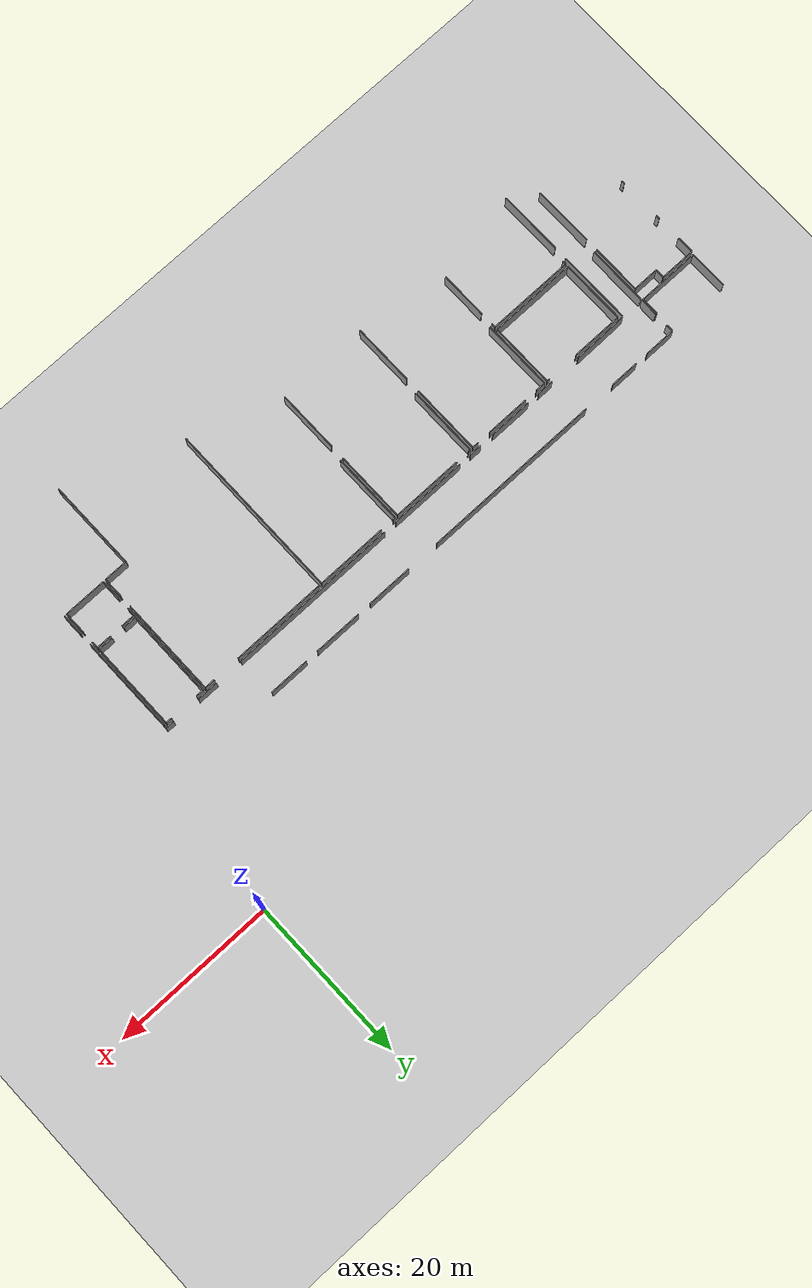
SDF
<sdf version="1.6">
 <world name="default">
  <model name="ground_plane">
   <static>1</static>
   <link name="link">
    <collision name="collision">
     <geometry><plane><normal>0 0 1</normal><size>100 100</size></plane></geometry>
     <surface><friction><ode><mu>100</mu><mu2>50</mu2></ode></friction></surface>
    </collision>
    <visual name="visual">
     <cast_shadows>0</cast_shadows>
     <geometry><plane><normal>0 0 1</normal><size>100 100</size></plane></geometry>
     <material>
      <script><uri>file://media/materials/scripts/gazebo.material</uri><name>Gazebo/Grey</name></script>
     </material>
    </visual>
   </link>
  </model>
  <model name="0510045904_A_40_1_102">
   <static>1</static>
   <link name="Wall_117">
    <collision name="Wall_117_Collision">
     <geometry><box><size>4.81902319499 0.1 2.5</size></box></geometry>
     <pose>2.4095115975 0 1.25 0 0 0</pose>
    </collision>
    <visual name="Wall_117_Visual">
     <pose>2.4095115975 0 1.25 0 0 0</pose>
     <geometry><box><size>4.81902319499 0.1 2.5</size></box></geometry>
     <material>
      <script><uri>file://media/materials/scripts/gazebo.material</uri><name>Gazebo/Grey</name></script>
      <ambient>1 1 1 1</ambient>
     </material>
    </visual>
    <pose>0.638592303884 -83.6713344421 0 0 0 1.57079632679</pose>
   </link>
   <link name="Wall_121">
    <collision name="Wall_121_Collision">
     <geometry><box><size>2.22986783805 0.1 2.5</size></box></geometry>
     <pose>1.11493391903 0 1.25 0 0 0</pose>
    </collision>
    <visual name="Wall_121_Visual">
     <pose>1.11493391903 0 1.25 0 0 0</pose>
     <geometry><box><size>2.22986783805 0.1 2.5</size></box></geometry>
     <material>
      <script><uri>file://media/materials/scripts/gazebo.material</uri><name>Gazebo/Grey</name></script>
      <ambient>1 1 1 1</ambient>
     </material>
    </visual>
    <pose>8.33648609189 -81.4490840073 0 0 0 -1.57079632679</pose>
   </link>
   <link name="Wall_122">
    <collision name="Wall_122_Collision">
     <geometry><box><size>7.69789755688 0.1 2.5</size></box></geometry>
     <pose>3.84894877844 0 1.25 0 0 0</pose>
    </collision>
    <visual name="Wall_122_Visual">
     <pose>3.84894877844 0 1.25 0 0 0</pose>
     <geometry><box><size>7.69789755688 0.1 2.5</size></box></geometry>
     <material>
      <script><uri>file://media/materials/scripts/gazebo.material</uri><name>Gazebo/Grey</name></script>
      <ambient>1 1 1 1</ambient>
     </material>
    </visual>
    <pose>8.33648609189 -83.6789518453 0 0 0 3.14060311009</pose>
   </link>
   <link name="Wall_123">
    <collision name="Wall_123_Collision">
     <geometry><box><size>2.25145048053 0.1 2.5</size></box></geometry>
     <pose>1.12572524027 0 1.25 0 0 0</pose>
    </collision>
    <visual name="Wall_123_Visual">
     <pose>1.12572524027 0 1.25 0 0 0</pose>
     <geometry><box><size>2.25145048053 0.1 2.5</size></box></geometry>
     <material>
      <script><uri>file://media/materials/scripts/gazebo.material</uri><name>Gazebo/Grey</name></script>
      <ambient>1 1 1 1</ambient>
     </material>
    </visual>
    <pose>8.48096283977 -83.7289727932 0 0 0 1.57079632679</pose>
   </link>
   <link name="Wall_124">
    <collision name="Wall_124_Collision">
     <geometry><box><size>0.934909289423 0.1 2.5</size></box></geometry>
     <pose>0.467454644712 0 1.25 0 0 0</pose>
    </collision>
    <visual name="Wall_124_Visual">
     <pose>0.467454644712 0 1.25 0 0 0</pose>
     <geometry><box><size>0.934909289423 0.1 2.5</size></box></geometry>
     <material>
      <script><uri>file://media/materials/scripts/gazebo.material</uri><name>Gazebo/Grey</name></script>
      <ambient>1 1 1 1</ambient>
     </material>
    </visual>
    <pose>8.48096283977 -79.7912831516 0 0 0 1.57079632679</pose>
   </link>
   <link name="Wall_125">
    <collision name="Wall_125_Collision">
     <geometry><box><size>3.87344954105 0.1 2.5</size></box></geometry>
     <pose>1.93672477053 0 1.25 0 0 0</pose>
    </collision>
    <visual name="Wall_125_Visual">
     <pose>1.93672477053 0 1.25 0 0 0</pose>
     <geometry><box><size>3.87344954105 0.1 2.5</size></box></geometry>
     <material>
      <script><uri>file://media/materials/scripts/gazebo.material</uri><name>Gazebo/Grey</name></script>
      <ambient>1 1 1 1</ambient>
     </material>
    </visual>
    <pose>8.48096283977 -78.8563738622 0 0 0 0.0</pose>
   </link>
   <link name="Wall_126">
    <collision name="Wall_126_Collision">
     <geometry><box><size>3.53269770335 0.1 2.5</size></box></geometry>
     <pose>1.76634885168 0 1.25 0 0 0</pose>
    </collision>
    <visual name="Wall_126_Visual">
     <pose>1.76634885168 0 1.25 0 0 0</pose>
     <geometry><box><size>3.53269770335 0.1 2.5</size></box></geometry>
     <material>
      <script><uri>file://media/materials/scripts/gazebo.material</uri><name>Gazebo/Grey</name></script>
      <ambient>1 1 1 1</ambient>
     </material>
    </visual>
    <pose>14.0589333096 -78.8563738622 0 0 0 0.0</pose>
   </link>
   <link name="Wall_127">
    <collision name="Wall_127_Collision">
     <geometry><box><size>22.369774144 0.1 2.5</size></box></geometry>
     <pose>11.184887072 0 1.25 0 0 0</pose>
    </collision>
    <visual name="Wall_127_Visual">
     <pose>11.184887072 0 1.25 0 0 0</pose>
     <geometry><box><size>22.369774144 0.1 2.5</size></box></geometry>
     <material>
      <script><uri>file://media/materials/scripts/gazebo.material</uri><name>Gazebo/Grey</name></script>
      <ambient>1 1 1 1</ambient>
     </material>
    </visual>
    <pose>21.67582871 -78.8563738622 0 0 0 0.0</pose>
   </link>
   <link name="Wall_128">
    <collision name="Wall_128_Collision">
     <geometry><box><size>5.63560882095 0.1 2.5</size></box></geometry>
     <pose>2.81780441048 0 1.25 0 0 0</pose>
    </collision>
    <visual name="Wall_128_Visual">
     <pose>2.81780441048 0 1.25 0 0 0</pose>
     <geometry><box><size>5.63560882095 0.1 2.5</size></box></geometry>
     <material>
      <script><uri>file://media/materials/scripts/gazebo.material</uri><name>Gazebo/Grey</name></script>
      <ambient>1 1 1 1</ambient>
     </material>
    </visual>
    <pose>48.1843919408 -78.8563738622 0 0 0 0.0</pose>
   </link>
   <link name="Wall_129">
    <collision name="Wall_129_Collision">
     <geometry><box><size>5.9568093237 0.1 2.5</size></box></geometry>
     <pose>2.97840466185 0 1.25 0 0 0</pose>
    </collision>
    <visual name="Wall_129_Visual">
     <pose>2.97840466185 0 1.25 0 0 0</pose>
     <geometry><box><size>5.9568093237 0.1 2.5</size></box></geometry>
     <material>
      <script><uri>file://media/materials/scripts/gazebo.material</uri><name>Gazebo/Grey</name></script>
      <ambient>1 1 1 1</ambient>
     </material>
    </visual>
    <pose>55.572003504 -78.8563738622 0 0 0 0.0</pose>
   </link>
   <link name="Wall_130">
    <collision name="Wall_130_Collision">
     <geometry><box><size>4.99269998857 0.1 2.5</size></box></geometry>
     <pose>2.49634999429 0 1.25 0 0 0</pose>
    </collision>
    <visual name="Wall_130_Visual">
     <pose>2.49634999429 0 1.25 0 0 0</pose>
     <geometry><box><size>4.99269998857 0.1 2.5</size></box></geometry>
     <material>
      <script><uri>file://media/materials/scripts/gazebo.material</uri><name>Gazebo/Grey</name></script>
      <ambient>1 1 1 1</ambient>
     </material>
    </visual>
    <pose>63.1348153415 -78.8563738622 0 0 0 0.0</pose>
   </link>
   <link name="Wall_133">
    <collision name="Wall_133_Collision">
     <geometry><box><size>1.09309736311 0.1 2.5</size></box></geometry>
     <pose>0.546548681554 0 1.25 0 0 0</pose>
    </collision>
    <visual name="Wall_133_Visual">
     <pose>0.546548681554 0 1.25 0 0 0</pose>
     <geometry><box><size>1.09309736311 0.1 2.5</size></box></geometry>
     <material>
      <script><uri>file://media/materials/scripts/gazebo.material</uri><name>Gazebo/Grey</name></script>
      <ambient>1 1 1 1</ambient>
     </material>
    </visual>
    <pose>79.0488402504 -83.65863877 0 0 0 3.14159265359</pose>
   </link>
   <link name="Wall_134">
    <collision name="Wall_134_Collision">
     <geometry><box><size>2.62775019996 0.1 2.5</size></box></geometry>
     <pose>1.31387509998 0 1.25 0 0 0</pose>
    </collision>
    <visual name="Wall_134_Visual">
     <pose>1.31387509998 0 1.25 0 0 0</pose>
     <geometry><box><size>2.62775019996 0.1 2.5</size></box></geometry>
     <material>
      <script><uri>file://media/materials/scripts/gazebo.material</uri><name>Gazebo/Grey</name></script>
      <ambient>1 1 1 1</ambient>
     </material>
    </visual>
    <pose>74.4133964731 -83.65863877 0 0 0 3.14159265359</pose>
   </link>
   <link name="Wall_135">
    <collision name="Wall_135_Collision">
     <geometry><box><size>20.9851841507 0.1 2.5</size></box></geometry>
     <pose>10.4925920754 0 1.25 0 0 0</pose>
    </collision>
    <visual name="Wall_135_Visual">
     <pose>10.4925920754 0 1.25 0 0 0</pose>
     <geometry><box><size>20.9851841507 0.1 2.5</size></box></geometry>
     <material>
      <script><uri>file://media/materials/scripts/gazebo.material</uri><name>Gazebo/Grey</name></script>
      <ambient>1 1 1 1</ambient>
     </material>
    </visual>
    <pose>68.2976373354 -83.65863877 0 0 0 3.14159265359</pose>
   </link>
   <link name="Wall_136">
    <collision name="Wall_136_Collision">
     <geometry><box><size>9.54206710932 0.1 2.5</size></box></geometry>
     <pose>4.77103355466 0 1.25 0 0 0</pose>
    </collision>
    <visual name="Wall_136_Visual">
     <pose>4.77103355466 0 1.25 0 0 0</pose>
     <geometry><box><size>9.54206710932 0.1 2.5</size></box></geometry>
     <material>
      <script><uri>file://media/materials/scripts/gazebo.material</uri><name>Gazebo/Grey</name></script>
      <ambient>1 1 1 1</ambient>
     </material>
    </visual>
    <pose>45.6612540785 -83.65863877 0 0 0 3.14159265359</pose>
   </link>
   <link name="Wall_137">
    <collision name="Wall_137_Collision">
     <geometry><box><size>1.5163710691 0.1 2.5</size></box></geometry>
     <pose>0.758185534551 0 1.25 0 0 0</pose>
    </collision>
    <visual name="Wall_137_Visual">
     <pose>0.758185534551 0 1.25 0 0 0</pose>
     <geometry><box><size>1.5163710691 0.1 2.5</size></box></geometry>
     <material>
      <script><uri>file://media/materials/scripts/gazebo.material</uri><name>Gazebo/Grey</name></script>
      <ambient>1 1 1 1</ambient>
     </material>
    </visual>
    <pose>34.5385757995 -83.65863877 0 0 0 3.14159265359</pose>
   </link>
   <link name="Wall_138">
    <collision name="Wall_138_Collision">
     <geometry><box><size>5.33040486498 0.1 2.5</size></box></geometry>
     <pose>2.66520243249 0 1.25 0 0 0</pose>
    </collision>
    <visual name="Wall_138_Visual">
     <pose>2.66520243249 0 1.25 0 0 0</pose>
     <geometry><box><size>5.33040486498 0.1 2.5</size></box></geometry>
     <material>
      <script><uri>file://media/materials/scripts/gazebo.material</uri><name>Gazebo/Grey</name></script>
      <ambient>1 1 1 1</ambient>
     </material>
    </visual>
    <pose>31.1744766209 -83.65863877 0 0 0 3.14159265359</pose>
   </link>
   <link name="Wall_139">
    <collision name="Wall_139_Collision">
     <geometry><box><size>2.00870923102 0.1 2.5</size></box></geometry>
     <pose>1.00435461551 0 1.25 0 0 0</pose>
    </collision>
    <visual name="Wall_139_Visual">
     <pose>1.00435461551 0 1.25 0 0 0</pose>
     <geometry><box><size>2.00870923102 0.1 2.5</size></box></geometry>
     <material>
      <script><uri>file://media/materials/scripts/gazebo.material</uri><name>Gazebo/Grey</name></script>
      <ambient>1 1 1 1</ambient>
     </material>
    </visual>
    <pose>24.2637144997 -83.65863877 0 0 0 3.14159265359</pose>
   </link>
   <link name="Wall_140">
    <collision name="Wall_140_Collision">
     <geometry><box><size>6.79788059049 0.1 2.5</size></box></geometry>
     <pose>3.39894029524 0 1.25 0 0 0</pose>
    </collision>
    <visual name="Wall_140_Visual">
     <pose>3.39894029524 0 1.25 0 0 0</pose>
     <geometry><box><size>6.79788059049 0.1 2.5</size></box></geometry>
     <material>
      <script><uri>file://media/materials/scripts/gazebo.material</uri><name>Gazebo/Grey</name></script>
      <ambient>1 1 1 1</ambient>
     </material>
    </visual>
    <pose>18.2645016314 -83.65863877 0 0 0 -3.13124600552</pose>
   </link>
   <link name="Wall_323">
    <collision name="Wall_323_Collision">
     <geometry><box><size>7.4942552084 0.1 2.5</size></box></geometry>
     <pose>3.7471276042 0 1.25 0 0 0</pose>
    </collision>
    <visual name="Wall_323_Visual">
     <pose>3.7471276042 0 1.25 0 0 0</pose>
     <geometry><box><size>7.4942552084 0.1 2.5</size></box></geometry>
     <material>
      <script><uri>file://media/materials/scripts/gazebo.material</uri><name>Gazebo/Grey</name></script>
      <ambient>1 1 1 1</ambient>
     </material>
    </visual>
    <pose>8.51447941397 -91.3512003758 0 0 0 1.57079632679</pose>
   </link>
   <link name="Wall_324">
    <collision name="Wall_324_Collision">
     <geometry><box><size>9.08781596354 0.1 2.5</size></box></geometry>
     <pose>4.54390798177 0 1.25 0 0 0</pose>
    </collision>
    <visual name="Wall_324_Visual">
     <pose>4.54390798177 0 1.25 0 0 0</pose>
     <geometry><box><size>9.08781596354 0.1 2.5</size></box></geometry>
     <material>
      <script><uri>file://media/materials/scripts/gazebo.material</uri><name>Gazebo/Grey</name></script>
      <ambient>1 1 1 1</ambient>
     </material>
    </visual>
    <pose>11.3489151548 -83.8569451674 0 0 0 -1.57079632679</pose>
   </link>
   <link name="Wall_325">
    <collision name="Wall_325_Collision">
     <geometry><box><size>8.02036385796 0.1 2.5</size></box></geometry>
     <pose>4.01018192898 0 1.25 0 0 0</pose>
    </collision>
    <visual name="Wall_325_Visual">
     <pose>4.01018192898 0 1.25 0 0 0</pose>
     <geometry><box><size>8.02036385796 0.1 2.5</size></box></geometry>
     <material>
      <script><uri>file://media/materials/scripts/gazebo.material</uri><name>Gazebo/Grey</name></script>
      <ambient>1 1 1 1</ambient>
     </material>
    </visual>
    <pose>11.3489151548 -94.6094176495 0 0 0 -1.57079632679</pose>
   </link>
   <link name="Wall_330">
    <collision name="Wall_330_Collision">
     <geometry><box><size>0.422511965671 0.1 2.5</size></box></geometry>
     <pose>0.211255982835 0 1.25 0 0 0</pose>
    </collision>
    <visual name="Wall_330_Visual">
     <pose>0.211255982835 0 1.25 0 0 0</pose>
     <geometry><box><size>0.422511965671 0.1 2.5</size></box></geometry>
     <material>
      <script><uri>file://media/materials/scripts/gazebo.material</uri><name>Gazebo/Grey</name></script>
      <ambient>1 1 1 1</ambient>
     </material>
    </visual>
    <pose>0.476341615143 -95.2871126233 0 0 0 1.57079632679</pose>
   </link>
   <link name="Wall_331">
    <collision name="Wall_331_Collision">
     <geometry><box><size>0.479896403316 0.1 2.5</size></box></geometry>
     <pose>0.239948201658 0 1.25 0 0 0</pose>
    </collision>
    <visual name="Wall_331_Visual">
     <pose>0.239948201658 0 1.25 0 0 0</pose>
     <geometry><box><size>0.479896403316 0.1 2.5</size></box></geometry>
     <material>
      <script><uri>file://media/materials/scripts/gazebo.material</uri><name>Gazebo/Grey</name></script>
      <ambient>1 1 1 1</ambient>
     </material>
    </visual>
    <pose>0.476341615143 -89.7190447776 0 0 0 1.57079632679</pose>
   </link>
   <link name="Wall_332">
    <collision name="Wall_332_Collision">
     <geometry><box><size>2.14125204718 0.1 2.5</size></box></geometry>
     <pose>1.07062602359 0 1.25 0 0 0</pose>
    </collision>
    <visual name="Wall_332_Visual">
     <pose>1.07062602359 0 1.25 0 0 0</pose>
     <geometry><box><size>2.14125204718 0.1 2.5</size></box></geometry>
     <material>
      <script><uri>file://media/materials/scripts/gazebo.material</uri><name>Gazebo/Grey</name></script>
      <ambient>1 1 1 1</ambient>
     </material>
    </visual>
    <pose>0.476341615143 -86.1673035662 0 0 0 1.57079632679</pose>
   </link>
   <link name="Wall_333">
    <collision name="Wall_333_Collision">
     <geometry><box><size>4.44145390836 0.1 2.5</size></box></geometry>
     <pose>2.22072695418 0 1.25 0 0 0</pose>
    </collision>
    <visual name="Wall_333_Visual">
     <pose>2.22072695418 0 1.25 0 0 0</pose>
     <geometry><box><size>4.44145390836 0.1 2.5</size></box></geometry>
     <material>
      <script><uri>file://media/materials/scripts/gazebo.material</uri><name>Gazebo/Grey</name></script>
      <ambient>1 1 1 1</ambient>
     </material>
    </visual>
    <pose>0.476341615143 -84.026051519 0 0 0 0.0</pose>
   </link>
   <link name="Wall_334">
    <collision name="Wall_334_Collision">
     <geometry><box><size>1.13245394645 0.1 2.5</size></box></geometry>
     <pose>0.566226973225 0 1.25 0 0 0</pose>
    </collision>
    <visual name="Wall_334_Visual">
     <pose>0.566226973225 0 1.25 0 0 0</pose>
     <geometry><box><size>1.13245394645 0.1 2.5</size></box></geometry>
     <material>
      <script><uri>file://media/materials/scripts/gazebo.material</uri><name>Gazebo/Grey</name></script>
      <ambient>1 1 1 1</ambient>
     </material>
    </visual>
    <pose>4.91779552351 -84.026051519 0 0 0 -1.57079632679</pose>
   </link>
   <link name="Wall_335">
    <collision name="Wall_335_Collision">
     <geometry><box><size>3.20845023931 0.1 2.5</size></box></geometry>
     <pose>1.60422511966 0 1.25 0 0 0</pose>
    </collision>
    <visual name="Wall_335_Visual">
     <pose>1.60422511966 0 1.25 0 0 0</pose>
     <geometry><box><size>3.20845023931 0.1 2.5</size></box></geometry>
     <material>
      <script><uri>file://media/materials/scripts/gazebo.material</uri><name>Gazebo/Grey</name></script>
      <ambient>1 1 1 1</ambient>
     </material>
    </visual>
    <pose>4.91779552351 -85.1585054655 0 0 0 0.0</pose>
   </link>
   <link name="Wall_336">
    <collision name="Wall_336_Collision">
     <geometry><box><size>6.19269491031 0.1 2.5</size></box></geometry>
     <pose>3.09634745515 0 1.25 0 0 0</pose>
    </collision>
    <visual name="Wall_336_Visual">
     <pose>3.09634745515 0 1.25 0 0 0</pose>
     <geometry><box><size>6.19269491031 0.1 2.5</size></box></geometry>
     <material>
      <script><uri>file://media/materials/scripts/gazebo.material</uri><name>Gazebo/Grey</name></script>
      <ambient>1 1 1 1</ambient>
     </material>
    </visual>
    <pose>8.12624576282 -85.1585054655 0 0 0 -1.57079632679</pose>
   </link>
   <link name="Wall_337">
    <collision name="Wall_337_Collision">
     <geometry><box><size>7.52145206627 0.1 2.5</size></box></geometry>
     <pose>3.76072603313 0 1.25 0 0 0</pose>
    </collision>
    <visual name="Wall_337_Visual">
     <pose>3.76072603313 0 1.25 0 0 0</pose>
     <geometry><box><size>7.52145206627 0.1 2.5</size></box></geometry>
     <material>
      <script><uri>file://media/materials/scripts/gazebo.material</uri><name>Gazebo/Grey</name></script>
      <ambient>1 1 1 1</ambient>
     </material>
    </visual>
    <pose>8.12624576282 -92.963804639 0 0 0 -1.56806187949</pose>
   </link>
   <link name="Wall_348">
    <collision name="Wall_348_Collision">
     <geometry><box><size>0.457044193634 0.1 2.5</size></box></geometry>
     <pose>0.228522096817 0 1.25 0 0 0</pose>
    </collision>
    <visual name="Wall_348_Visual">
     <pose>0.228522096817 0 1.25 0 0 0</pose>
     <geometry><box><size>0.457044193634 0.1 2.5</size></box></geometry>
     <material>
      <script><uri>file://media/materials/scripts/gazebo.material</uri><name>Gazebo/Grey</name></script>
      <ambient>1 1 1 1</ambient>
     </material>
    </visual>
    <pose>11.8029123872 -92.9302880648 0 0 0 1.57079632679</pose>
   </link>
   <link name="Wall_349">
    <collision name="Wall_349_Collision">
     <geometry><box><size>10.7997003821 0.1 2.5</size></box></geometry>
     <pose>5.39985019107 0 1.25 0 0 0</pose>
    </collision>
    <visual name="Wall_349_Visual">
     <pose>5.39985019107 0 1.25 0 0 0</pose>
     <geometry><box><size>10.7997003821 0.1 2.5</size></box></geometry>
     <material>
      <script><uri>file://media/materials/scripts/gazebo.material</uri><name>Gazebo/Grey</name></script>
      <ambient>1 1 1 1</ambient>
     </material>
    </visual>
    <pose>11.8029123872 -92.4732438712 0 0 0 0.0</pose>
   </link>
   <link name="Wall_350">
    <collision name="Wall_350_Collision">
     <geometry><box><size>0.490560767834 0.1 2.5</size></box></geometry>
     <pose>0.245280383917 0 1.25 0 0 0</pose>
    </collision>
    <visual name="Wall_350_Visual">
     <pose>0.245280383917 0 1.25 0 0 0</pose>
     <geometry><box><size>0.490560767834 0.1 2.5</size></box></geometry>
     <material>
      <script><uri>file://media/materials/scripts/gazebo.material</uri><name>Gazebo/Grey</name></script>
      <ambient>1 1 1 1</ambient>
     </material>
    </visual>
    <pose>22.6026127693 -92.4732438712 0 0 0 -1.57079632679</pose>
   </link>
   <link name="Wall_351">
    <collision name="Wall_351_Collision">
     <geometry><box><size>5.85930656239 0.1 2.5</size></box></geometry>
     <pose>2.9296532812 0 1.25 0 0 0</pose>
    </collision>
    <visual name="Wall_351_Visual">
     <pose>2.9296532812 0 1.25 0 0 0</pose>
     <geometry><box><size>5.85930656239 0.1 2.5</size></box></geometry>
     <material>
      <script><uri>file://media/materials/scripts/gazebo.material</uri><name>Gazebo/Grey</name></script>
      <ambient>1 1 1 1</ambient>
     </material>
    </visual>
    <pose>22.6026127693 -94.5863115264 0 0 0 -1.57079632679</pose>
   </link>
   <link name="Wall_369">
    <collision name="Wall_369_Collision">
     <geometry><box><size>8.78210418068 0.1 2.5</size></box></geometry>
     <pose>4.39105209034 0 1.25 0 0 0</pose>
    </collision>
    <visual name="Wall_369_Visual">
     <pose>4.39105209034 0 1.25 0 0 0</pose>
     <geometry><box><size>8.78210418068 0.1 2.5</size></box></geometry>
     <material>
      <script><uri>file://media/materials/scripts/gazebo.material</uri><name>Gazebo/Grey</name></script>
      <ambient>1 1 1 1</ambient>
     </material>
    </visual>
    <pose>22.9847524979 -92.8640166567 0 0 0 1.57079632679</pose>
   </link>
   <link name="Wall_370">
    <collision name="Wall_370_Collision">
     <geometry><box><size>1.22310104485 0.1 2.5</size></box></geometry>
     <pose>0.611550522427 0 1.25 0 0 0</pose>
    </collision>
    <visual name="Wall_370_Visual">
     <pose>0.611550522427 0 1.25 0 0 0</pose>
     <geometry><box><size>1.22310104485 0.1 2.5</size></box></geometry>
     <material>
      <script><uri>file://media/materials/scripts/gazebo.material</uri><name>Gazebo/Grey</name></script>
      <ambient>1 1 1 1</ambient>
     </material>
    </visual>
    <pose>22.9847524979 -84.081912476 0 0 0 0.0</pose>
   </link>
   <link name="Wall_371">
    <collision name="Wall_371_Collision">
     <geometry><box><size>5.40607107037 0.1 2.5</size></box></geometry>
     <pose>2.70303553519 0 1.25 0 0 0</pose>
    </collision>
    <visual name="Wall_371_Visual">
     <pose>2.70303553519 0 1.25 0 0 0</pose>
     <geometry><box><size>5.40607107037 0.1 2.5</size></box></geometry>
     <material>
      <script><uri>file://media/materials/scripts/gazebo.material</uri><name>Gazebo/Grey</name></script>
      <ambient>1 1 1 1</ambient>
     </material>
    </visual>
    <pose>25.8171569312 -84.081912476 0 0 0 0.0</pose>
   </link>
   <link name="Wall_372">
    <collision name="Wall_372_Collision">
     <geometry><box><size>0.806429088324 0.1 2.5</size></box></geometry>
     <pose>0.403214544162 0 1.25 0 0 0</pose>
    </collision>
    <visual name="Wall_372_Visual">
     <pose>0.403214544162 0 1.25 0 0 0</pose>
     <geometry><box><size>0.806429088324 0.1 2.5</size></box></geometry>
     <material>
      <script><uri>file://media/materials/scripts/gazebo.material</uri><name>Gazebo/Grey</name></script>
      <ambient>1 1 1 1</ambient>
     </material>
    </visual>
    <pose>32.9704063885 -84.081912476 0 0 0 0.0</pose>
   </link>
   <link name="Wall_373">
    <collision name="Wall_373_Collision">
     <geometry><box><size>8.77220155649 0.1 2.5</size></box></geometry>
     <pose>4.38610077824 0 1.25 0 0 0</pose>
    </collision>
    <visual name="Wall_373_Visual">
     <pose>4.38610077824 0 1.25 0 0 0</pose>
     <geometry><box><size>8.77220155649 0.1 2.5</size></box></geometry>
     <material>
      <script><uri>file://media/materials/scripts/gazebo.material</uri><name>Gazebo/Grey</name></script>
      <ambient>1 1 1 1</ambient>
     </material>
    </visual>
    <pose>33.7768354768 -84.081912476 0 0 0 -1.57079632679</pose>
   </link>
   <link name="Wall_374">
    <collision name="Wall_374_Collision">
     <geometry><box><size>7.59201188315 0.1 2.5</size></box></geometry>
     <pose>3.79600594157 0 1.25 0 0 0</pose>
    </collision>
    <visual name="Wall_374_Visual">
     <pose>3.79600594157 0 1.25 0 0 0</pose>
     <geometry><box><size>7.59201188315 0.1 2.5</size></box></geometry>
     <material>
      <script><uri>file://media/materials/scripts/gazebo.material</uri><name>Gazebo/Grey</name></script>
      <ambient>1 1 1 1</ambient>
     </material>
    </visual>
    <pose>33.7768354768 -94.7076821512 0 0 0 -1.57079632679</pose>
   </link>
   <link name="Wall_382">
    <collision name="Wall_382_Collision">
     <geometry><box><size>8.03001256872 0.1 2.5</size></box></geometry>
     <pose>4.01500628436 0 1.25 0 0 0</pose>
    </collision>
    <visual name="Wall_382_Visual">
     <pose>4.01500628436 0 1.25 0 0 0</pose>
     <geometry><box><size>8.03001256872 0.1 2.5</size></box></geometry>
     <material>
      <script><uri>file://media/materials/scripts/gazebo.material</uri><name>Gazebo/Grey</name></script>
      <ambient>1 1 1 1</ambient>
     </material>
    </visual>
    <pose>11.8303350388 -92.0974519786 0 0 0 1.57079632679</pose>
   </link>
   <link name="Wall_383">
    <collision name="Wall_383_Collision">
     <geometry><box><size>6.36560996356 0.1 2.5</size></box></geometry>
     <pose>3.18280498178 0 1.25 0 0 0</pose>
    </collision>
    <visual name="Wall_383_Visual">
     <pose>3.18280498178 0 1.25 0 0 0</pose>
     <geometry><box><size>6.36560996356 0.1 2.5</size></box></geometry>
     <material>
      <script><uri>file://media/materials/scripts/gazebo.material</uri><name>Gazebo/Grey</name></script>
      <ambient>1 1 1 1</ambient>
     </material>
    </visual>
    <pose>11.8303350388 -84.0674394099 0 0 0 0.0</pose>
   </link>
   <link name="Wall_384">
    <collision name="Wall_384_Collision">
     <geometry><box><size>0.350400548453 0.1 2.5</size></box></geometry>
     <pose>0.175200274227 0 1.25 0 0 0</pose>
    </collision>
    <visual name="Wall_384_Visual">
     <pose>0.175200274227 0 1.25 0 0 0</pose>
     <geometry><box><size>0.350400548453 0.1 2.5</size></box></geometry>
     <material>
      <script><uri>file://media/materials/scripts/gazebo.material</uri><name>Gazebo/Grey</name></script>
      <ambient>1 1 1 1</ambient>
     </material>
    </visual>
    <pose>22.2547513553 -84.0674394099 0 0 0 0.0</pose>
   </link>
   <link name="Wall_385">
    <collision name="Wall_385_Collision">
     <geometry><box><size>8.02391864613 0.1 2.5</size></box></geometry>
     <pose>4.01195932307 0 1.25 0 0 0</pose>
    </collision>
    <visual name="Wall_385_Visual">
     <pose>4.01195932307 0 1.25 0 0 0</pose>
     <geometry><box><size>8.02391864613 0.1 2.5</size></box></geometry>
     <material>
      <script><uri>file://media/materials/scripts/gazebo.material</uri><name>Gazebo/Grey</name></script>
      <ambient>1 1 1 1</ambient>
     </material>
    </visual>
    <pose>22.6051519037 -84.0674394099 0 0 0 -1.57079632679</pose>
   </link>
   <link name="Wall_386">
    <collision name="Wall_386_Collision">
     <geometry><box><size>10.7748185882 0.1 2.5</size></box></geometry>
     <pose>5.3874092941 0 1.25 0 0 0</pose>
    </collision>
    <visual name="Wall_386_Visual">
     <pose>5.3874092941 0 1.25 0 0 0</pose>
     <geometry><box><size>10.7748185882 0.1 2.5</size></box></geometry>
     <material>
      <script><uri>file://media/materials/scripts/gazebo.material</uri><name>Gazebo/Grey</name></script>
      <ambient>1 1 1 1</ambient>
     </material>
    </visual>
    <pose>22.6051519037 -92.091358056 0 0 0 -3.14102708278</pose>
   </link>
   <link name="Wall_389">
    <collision name="Wall_389_Collision">
     <geometry><box><size>8.79759290058 0.1 2.5</size></box></geometry>
     <pose>4.39879645029 0 1.25 0 0 0</pose>
    </collision>
    <visual name="Wall_389_Visual">
     <pose>4.39879645029 0 1.25 0 0 0</pose>
     <geometry><box><size>8.79759290058 0.1 2.5</size></box></geometry>
     <material>
      <script><uri>file://media/materials/scripts/gazebo.material</uri><name>Gazebo/Grey</name></script>
      <ambient>1 1 1 1</ambient>
     </material>
    </visual>
    <pose>34.158213465 -92.8673175315 0 0 0 1.57079632679</pose>
   </link>
   <link name="Wall_390">
    <collision name="Wall_390_Collision">
     <geometry><box><size>0.317391801135 0.1 2.5</size></box></geometry>
     <pose>0.158695900568 0 1.25 0 0 0</pose>
    </collision>
    <visual name="Wall_390_Visual">
     <pose>0.158695900568 0 1.25 0 0 0</pose>
     <geometry><box><size>0.317391801135 0.1 2.5</size></box></geometry>
     <material>
      <script><uri>file://media/materials/scripts/gazebo.material</uri><name>Gazebo/Grey</name></script>
      <ambient>1 1 1 1</ambient>
     </material>
    </visual>
    <pose>34.158213465 -84.0697246309 0 0 0 0.0</pose>
   </link>
   <link name="Wall_391">
    <collision name="Wall_391_Collision">
     <geometry><box><size>8.85396168446 0.1 2.5</size></box></geometry>
     <pose>4.42698084223 0 1.25 0 0 0</pose>
    </collision>
    <visual name="Wall_391_Visual">
     <pose>4.42698084223 0 1.25 0 0 0</pose>
     <geometry><box><size>8.85396168446 0.1 2.5</size></box></geometry>
     <material>
      <script><uri>file://media/materials/scripts/gazebo.material</uri><name>Gazebo/Grey</name></script>
      <ambient>1 1 1 1</ambient>
     </material>
    </visual>
    <pose>36.156512245 -84.0697246309 0 0 0 0.0</pose>
   </link>
   <link name="Wall_392">
    <collision name="Wall_392_Collision">
     <geometry><box><size>8.75011108713 0.1 2.5</size></box></geometry>
     <pose>4.37505554357 0 1.25 0 0 0</pose>
    </collision>
    <visual name="Wall_392_Visual">
     <pose>4.37505554357 0 1.25 0 0 0</pose>
     <geometry><box><size>8.75011108713 0.1 2.5</size></box></geometry>
     <material>
      <script><uri>file://media/materials/scripts/gazebo.material</uri><name>Gazebo/Grey</name></script>
      <ambient>1 1 1 1</ambient>
     </material>
    </visual>
    <pose>45.0104739294 -84.0697246309 0 0 0 -1.57079632679</pose>
   </link>
   <link name="Wall_393">
    <collision name="Wall_393_Collision">
     <geometry><box><size>7.6575215509 0.1 2.5</size></box></geometry>
     <pose>3.82876077545 0 1.25 0 0 0</pose>
    </collision>
    <visual name="Wall_393_Visual">
     <pose>3.82876077545 0 1.25 0 0 0</pose>
     <geometry><box><size>7.6575215509 0.1 2.5</size></box></geometry>
     <material>
      <script><uri>file://media/materials/scripts/gazebo.material</uri><name>Gazebo/Grey</name></script>
      <ambient>1 1 1 1</ambient>
     </material>
    </visual>
    <pose>45.0104739294 -94.6675638275 0 0 0 -1.57079632679</pose>
   </link>
   <link name="Wall_400">
    <collision name="Wall_400_Collision">
     <geometry><box><size>8.78794418983 0.1 2.5</size></box></geometry>
     <pose>4.39397209491 0 1.25 0 0 0</pose>
    </collision>
    <visual name="Wall_400_Visual">
     <pose>4.39397209491 0 1.25 0 0 0</pose>
     <geometry><box><size>8.78794418983 0.1 2.5</size></box></geometry>
     <material>
      <script><uri>file://media/materials/scripts/gazebo.material</uri><name>Gazebo/Grey</name></script>
      <ambient>1 1 1 1</ambient>
     </material>
    </visual>
    <pose>45.3659527467 -92.8470044562 0 0 0 1.57079632679</pose>
   </link>
   <link name="Wall_401">
    <collision name="Wall_401_Collision">
     <geometry><box><size>0.269148247362 0.1 2.5</size></box></geometry>
     <pose>0.134574123681 0 1.25 0 0 0</pose>
    </collision>
    <visual name="Wall_401_Visual">
     <pose>0.134574123681 0 1.25 0 0 0</pose>
     <geometry><box><size>0.269148247362 0.1 2.5</size></box></geometry>
     <material>
      <script><uri>file://media/materials/scripts/gazebo.material</uri><name>Gazebo/Grey</name></script>
      <ambient>1 1 1 1</ambient>
     </material>
    </visual>
    <pose>45.3659527467 -84.0590602664 0 0 0 0.0</pose>
   </link>
   <link name="Wall_402">
    <collision name="Wall_402_Collision">
     <geometry><box><size>8.81231988015 0.1 2.5</size></box></geometry>
     <pose>4.40615994008 0 1.25 0 0 0</pose>
    </collision>
    <visual name="Wall_402_Visual">
     <pose>4.40615994008 0 1.25 0 0 0</pose>
     <geometry><box><size>8.81231988015 0.1 2.5</size></box></geometry>
     <material>
      <script><uri>file://media/materials/scripts/gazebo.material</uri><name>Gazebo/Grey</name></script>
      <ambient>1 1 1 1</ambient>
     </material>
    </visual>
    <pose>47.3525715084 -84.0590602664 0 0 0 0.0</pose>
   </link>
   <link name="Wall_403">
    <collision name="Wall_403_Collision">
     <geometry><box><size>22.0493600893 0.1 2.5</size></box></geometry>
     <pose>11.0246800446 0 1.25 0 0 0</pose>
    </collision>
    <visual name="Wall_403_Visual">
     <pose>11.0246800446 0 1.25 0 0 0</pose>
     <geometry><box><size>22.0493600893 0.1 2.5</size></box></geometry>
     <material>
      <script><uri>file://media/materials/scripts/gazebo.material</uri><name>Gazebo/Grey</name></script>
      <ambient>1 1 1 1</ambient>
     </material>
    </visual>
    <pose>56.1648913885 -84.0590602664 0 0 0 -1.57229336614</pose>
   </link>
   <link name="Wall_411">
    <collision name="Wall_411_Collision">
     <geometry><box><size>11.7341018447 0.1 2.5</size></box></geometry>
     <pose>5.86705092234 0 1.25 0 0 0</pose>
    </collision>
    <visual name="Wall_411_Visual">
     <pose>5.86705092234 0 1.25 0 0 0</pose>
     <geometry><box><size>11.7341018447 0.1 2.5</size></box></geometry>
     <material>
      <script><uri>file://media/materials/scripts/gazebo.material</uri><name>Gazebo/Grey</name></script>
      <ambient>1 1 1 1</ambient>
     </material>
    </visual>
    <pose>56.5691215865 -84.0674394099 0 0 0 0.0</pose>
   </link>
   <link name="Wall_412">
    <collision name="Wall_412_Collision">
     <geometry><box><size>1.28480201099 0.1 2.5</size></box></geometry>
     <pose>0.642401005497 0 1.25 0 0 0</pose>
    </collision>
    <visual name="Wall_412_Visual">
     <pose>0.642401005497 0 1.25 0 0 0</pose>
     <geometry><box><size>1.28480201099 0.1 2.5</size></box></geometry>
     <material>
      <script><uri>file://media/materials/scripts/gazebo.material</uri><name>Gazebo/Grey</name></script>
      <ambient>1 1 1 1</ambient>
     </material>
    </visual>
    <pose>71.7488288243 -84.0674394099 0 0 0 0.0</pose>
   </link>
   <link name="Wall_413">
    <collision name="Wall_413_Collision">
     <geometry><box><size>12.1898764711 0.1 2.5</size></box></geometry>
     <pose>6.09493823556 0 1.25 0 0 0</pose>
    </collision>
    <visual name="Wall_413_Visual">
     <pose>6.09493823556 0 1.25 0 0 0</pose>
     <geometry><box><size>12.1898764711 0.1 2.5</size></box></geometry>
     <material>
      <script><uri>file://media/materials/scripts/gazebo.material</uri><name>Gazebo/Grey</name></script>
      <ambient>1 1 1 1</ambient>
     </material>
    </visual>
    <pose>73.0336308352 -84.0674394099 0 0 0 -1.57079632679</pose>
   </link>
   <link name="Wall_414">
    <collision name="Wall_414_Collision">
     <geometry><box><size>2.41776378433 0.1 2.5</size></box></geometry>
     <pose>1.20888189216 0 1.25 0 0 0</pose>
    </collision>
    <visual name="Wall_414_Visual">
     <pose>1.20888189216 0 1.25 0 0 0</pose>
     <geometry><box><size>2.41776378433 0.1 2.5</size></box></geometry>
     <material>
      <script><uri>file://media/materials/scripts/gazebo.material</uri><name>Gazebo/Grey</name></script>
      <ambient>1 1 1 1</ambient>
     </material>
    </visual>
    <pose>73.0336308352 -97.7988243808 0 0 0 -1.57079632679</pose>
   </link>
   <link name="Wall_415">
    <collision name="Wall_415_Collision">
     <geometry><box><size>2.93168458872 0.1 2.5</size></box></geometry>
     <pose>1.46584229436 0 1.25 0 0 0</pose>
    </collision>
    <visual name="Wall_415_Visual">
     <pose>1.46584229436 0 1.25 0 0 0</pose>
     <geometry><box><size>2.93168458872 0.1 2.5</size></box></geometry>
     <material>
      <script><uri>file://media/materials/scripts/gazebo.material</uri><name>Gazebo/Grey</name></script>
      <ambient>1 1 1 1</ambient>
     </material>
    </visual>
    <pose>73.0336308352 -100.216588165 0 0 0 3.14159265359</pose>
   </link>
   <link name="Wall_416">
    <collision name="Wall_416_Collision">
     <geometry><box><size>11.0716416774 0.1 2.5</size></box></geometry>
     <pose>5.53582083868 0 1.25 0 0 0</pose>
    </collision>
    <visual name="Wall_416_Visual">
     <pose>5.53582083868 0 1.25 0 0 0</pose>
     <geometry><box><size>11.0716416774 0.1 2.5</size></box></geometry>
     <material>
      <script><uri>file://media/materials/scripts/gazebo.material</uri><name>Gazebo/Grey</name></script>
      <ambient>1 1 1 1</ambient>
     </material>
    </visual>
    <pose>70.1019462465 -100.216588165 0 0 0 -1.57079632679</pose>
   </link>
   <link name="Wall_419">
    <collision name="Wall_419_Collision">
     <geometry><box><size>1.86220117562 0.1 2.5</size></box></geometry>
     <pose>0.93110058781 0 1.25 0 0 0</pose>
    </collision>
    <visual name="Wall_419_Visual">
     <pose>0.93110058781 0 1.25 0 0 0</pose>
     <geometry><box><size>1.86220117562 0.1 2.5</size></box></geometry>
     <material>
      <script><uri>file://media/materials/scripts/gazebo.material</uri><name>Gazebo/Grey</name></script>
      <ambient>1 1 1 1</ambient>
     </material>
    </visual>
    <pose>78.6268361116 -94.9222390087 0 0 0 3.14159265359</pose>
   </link>
   <link name="Wall_420">
    <collision name="Wall_420_Collision">
     <geometry><box><size>1.74438533904 0.1 2.5</size></box></geometry>
     <pose>0.872192669519 0 1.25 0 0 0</pose>
    </collision>
    <visual name="Wall_420_Visual">
     <pose>0.872192669519 0 1.25 0 0 0</pose>
     <geometry><box><size>1.74438533904 0.1 2.5</size></box></geometry>
     <material>
      <script><uri>file://media/materials/scripts/gazebo.material</uri><name>Gazebo/Grey</name></script>
      <ambient>1 1 1 1</ambient>
     </material>
    </visual>
    <pose>75.1048027727 -94.9222390087 0 0 0 3.14159265359</pose>
   </link>
   <link name="Wall_421">
    <collision name="Wall_421_Collision">
     <geometry><box><size>10.8680030977 0.1 2.5</size></box></geometry>
     <pose>5.43400154887 0 1.25 0 0 0</pose>
    </collision>
    <visual name="Wall_421_Visual">
     <pose>5.43400154887 0 1.25 0 0 0</pose>
     <geometry><box><size>10.8680030977 0.1 2.5</size></box></geometry>
     <material>
      <script><uri>file://media/materials/scripts/gazebo.material</uri><name>Gazebo/Grey</name></script>
      <ambient>1 1 1 1</ambient>
     </material>
    </visual>
    <pose>73.3604174337 -94.9222390087 0 0 0 1.57079632679</pose>
   </link>
   <link name="Wall_422">
    <collision name="Wall_422_Collision">
     <geometry><box><size>0.983406756637 0.1 2.5</size></box></geometry>
     <pose>0.491703378318 0 1.25 0 0 0</pose>
    </collision>
    <visual name="Wall_422_Visual">
     <pose>0.491703378318 0 1.25 0 0 0</pose>
     <geometry><box><size>0.983406756637 0.1 2.5</size></box></geometry>
     <material>
      <script><uri>file://media/materials/scripts/gazebo.material</uri><name>Gazebo/Grey</name></script>
      <ambient>1 1 1 1</ambient>
     </material>
    </visual>
    <pose>73.3604174337 -84.054235911 0 0 0 0.0</pose>
   </link>
   <link name="Wall_423">
    <collision name="Wall_423_Collision">
     <geometry><box><size>0.751329871647 0.1 2.5</size></box></geometry>
     <pose>0.375664935823 0 1.25 0 0 0</pose>
    </collision>
    <visual name="Wall_423_Visual">
     <pose>0.375664935823 0 1.25 0 0 0</pose>
     <geometry><box><size>0.751329871647 0.1 2.5</size></box></geometry>
     <material>
      <script><uri>file://media/materials/scripts/gazebo.material</uri><name>Gazebo/Grey</name></script>
      <ambient>1 1 1 1</ambient>
     </material>
    </visual>
    <pose>77.8831236432 -84.054235911 0 0 0 0.0</pose>
   </link>
   <link name="Wall_424">
    <collision name="Wall_424_Collision">
     <geometry><box><size>10.8680057673 0.1 2.5</size></box></geometry>
     <pose>5.43400288363 0 1.25 0 0 0</pose>
    </collision>
    <visual name="Wall_424_Visual">
     <pose>5.43400288363 0 1.25 0 0 0</pose>
     <geometry><box><size>10.8680057673 0.1 2.5</size></box></geometry>
     <material>
      <script><uri>file://media/materials/scripts/gazebo.material</uri><name>Gazebo/Grey</name></script>
      <ambient>1 1 1 1</ambient>
     </material>
    </visual>
    <pose>78.6344535148 -84.054235911 0 0 0 -1.57149722851</pose>
   </link>
   <link name="Wall_425">
    <collision name="Wall_425_Collision">
     <geometry><box><size>5.30907613595 0.1 2.5</size></box></geometry>
     <pose>2.65453806797 0 1.25 0 0 0</pose>
    </collision>
    <visual name="Wall_425_Visual">
     <pose>2.65453806797 0 1.25 0 0 0</pose>
     <geometry><box><size>5.30907613595 0.1 2.5</size></box></geometry>
     <material>
      <script><uri>file://media/materials/scripts/gazebo.material</uri><name>Gazebo/Grey</name></script>
      <ambient>1 1 1 1</ambient>
     </material>
    </visual>
    <pose>78.6344535148 -100.209732502 0 0 0 3.14159265359</pose>
   </link>
   <link name="Wall_426">
    <collision name="Wall_426_Collision">
     <geometry><box><size>2.37078979776 0.1 2.5</size></box></geometry>
     <pose>1.18539489888 0 1.25 0 0 0</pose>
    </collision>
    <visual name="Wall_426_Visual">
     <pose>1.18539489888 0 1.25 0 0 0</pose>
     <geometry><box><size>2.37078979776 0.1 2.5</size></box></geometry>
     <material>
      <script><uri>file://media/materials/scripts/gazebo.material</uri><name>Gazebo/Grey</name></script>
      <ambient>1 1 1 1</ambient>
     </material>
    </visual>
    <pose>73.3253773789 -100.209732502 0 0 0 1.57079632679</pose>
   </link>
   <link name="Wall_427">
    <collision name="Wall_427_Collision">
     <geometry><box><size>1.03774423299 0.1 2.5</size></box></geometry>
     <pose>0.518872116495 0 1.25 0 0 0</pose>
    </collision>
    <visual name="Wall_427_Visual">
     <pose>0.518872116495 0 1.25 0 0 0</pose>
     <geometry><box><size>1.03774423299 0.1 2.5</size></box></geometry>
     <material>
      <script><uri>file://media/materials/scripts/gazebo.material</uri><name>Gazebo/Grey</name></script>
      <ambient>1 1 1 1</ambient>
     </material>
    </visual>
    <pose>73.3253773789 -96.2202445186 0 0 0 1.57079632679</pose>
   </link>
   <link name="Wall_428">
    <collision name="Wall_428_Collision">
     <geometry><box><size>1.77942539388 0.1 2.5</size></box></geometry>
     <pose>0.889712696942 0 1.25 0 0 0</pose>
    </collision>
    <visual name="Wall_428_Visual">
     <pose>0.889712696942 0 1.25 0 0 0</pose>
     <geometry><box><size>1.77942539388 0.1 2.5</size></box></geometry>
     <material>
      <script><uri>file://media/materials/scripts/gazebo.material</uri><name>Gazebo/Grey</name></script>
      <ambient>1 1 1 1</ambient>
     </material>
    </visual>
    <pose>73.3253773789 -95.1825002857 0 0 0 0.0</pose>
   </link>
   <link name="Wall_429">
    <collision name="Wall_429_Collision">
     <geometry><box><size>1.87895946272 0.1 2.5</size></box></geometry>
     <pose>0.93947973136 0 1.25 0 0 0</pose>
    </collision>
    <visual name="Wall_429_Visual">
     <pose>0.93947973136 0 1.25 0 0 0</pose>
     <geometry><box><size>1.87895946272 0.1 2.5</size></box></geometry>
     <material>
      <script><uri>file://media/materials/scripts/gazebo.material</uri><name>Gazebo/Grey</name></script>
      <ambient>1 1 1 1</ambient>
     </material>
    </visual>
    <pose>76.7496540429 -95.1825002857 0 0 0 0.0</pose>
   </link>
   <link name="Wall_430">
    <collision name="Wall_430_Collision">
     <geometry><box><size>0.870923102314 0.1 2.5</size></box></geometry>
     <pose>0.435461551157 0 1.25 0 0 0</pose>
    </collision>
    <visual name="Wall_430_Visual">
     <pose>0.435461551157 0 1.25 0 0 0</pose>
     <geometry><box><size>0.870923102314 0.1 2.5</size></box></geometry>
     <material>
      <script><uri>file://media/materials/scripts/gazebo.material</uri><name>Gazebo/Grey</name></script>
      <ambient>1 1 1 1</ambient>
     </material>
    </visual>
    <pose>78.6286135057 -95.1825002857 0 0 0 -1.57079632679</pose>
   </link>
   <link name="Wall_431">
    <collision name="Wall_431_Collision">
     <geometry><box><size>2.58205238498 0.1 2.5</size></box></geometry>
     <pose>1.29102619249 0 1.25 0 0 0</pose>
    </collision>
    <visual name="Wall_431_Visual">
     <pose>1.29102619249 0 1.25 0 0 0</pose>
     <geometry><box><size>2.58205238498 0.1 2.5</size></box></geometry>
     <material>
      <script><uri>file://media/materials/scripts/gazebo.material</uri><name>Gazebo/Grey</name></script>
      <ambient>1 1 1 1</ambient>
     </material>
    </visual>
    <pose>78.6286135057 -97.6276867216 0 0 0 -1.56853455467</pose>
   </link>
   <link name="Wall_432">
    <collision name="Wall_432_Collision">
     <geometry><box><size>2.53913440908 0.1 2.5</size></box></geometry>
     <pose>1.26956720454 0 1.25 0 0 0</pose>
    </collision>
    <visual name="Wall_432_Visual">
     <pose>1.26956720454 0 1.25 0 0 0</pose>
     <geometry><box><size>2.53913440908 0.1 2.5</size></box></geometry>
     <material>
      <script><uri>file://media/materials/scripts/gazebo.material</uri><name>Gazebo/Grey</name></script>
      <ambient>1 1 1 1</ambient>
     </material>
    </visual>
    <pose>78.9333096347 -100.192212475 0 0 0 1.57079632679</pose>
   </link>
   <link name="Wall_433">
    <collision name="Wall_433_Collision">
     <geometry><box><size>11.984206584 0.1 2.5</size></box></geometry>
     <pose>5.99210329199 0 1.25 0 0 0</pose>
    </collision>
    <visual name="Wall_433_Visual">
     <pose>5.99210329199 0 1.25 0 0 0</pose>
     <geometry><box><size>11.984206584 0.1 2.5</size></box></geometry>
     <material>
      <script><uri>file://media/materials/scripts/gazebo.material</uri><name>Gazebo/Grey</name></script>
      <ambient>1 1 1 1</ambient>
     </material>
    </visual>
    <pose>78.9333096347 -96.016605939 0 0 0 1.57079632679</pose>
   </link>
   <pose>-84.3 62.4479902751 0 0 0 0</pose>
  </model>
 </world>
</sdf>
